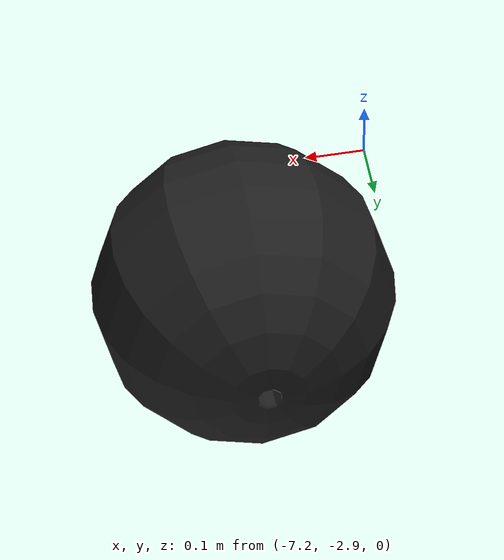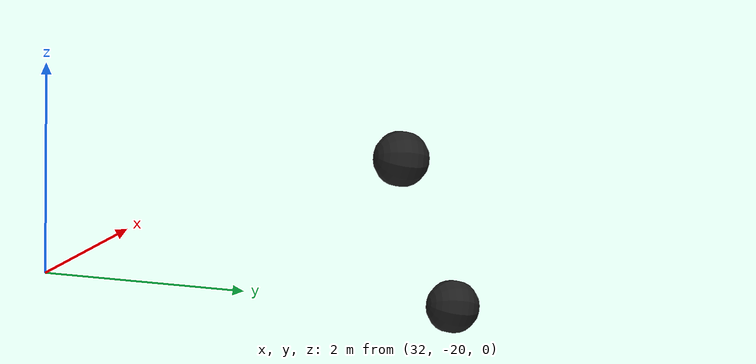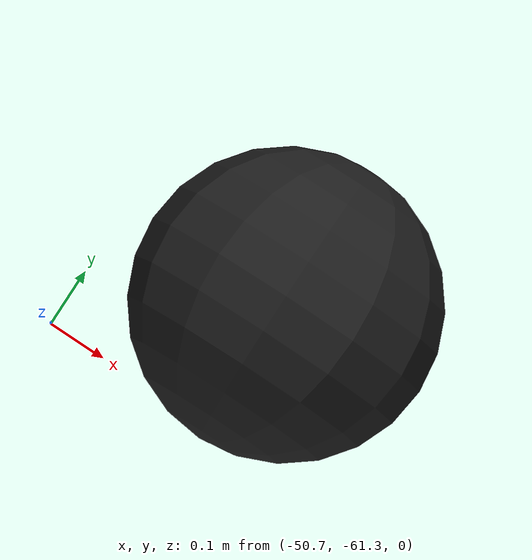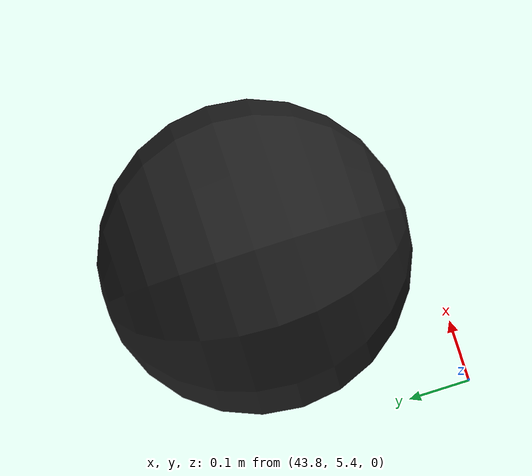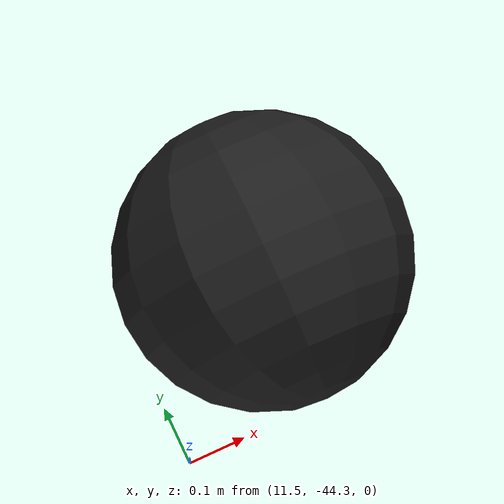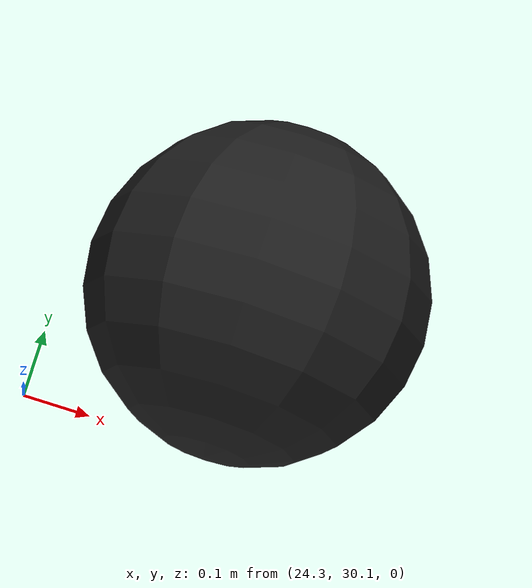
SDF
<?xml version="1.0"?>
<sdf version="1.6">
  <model name="robotx_obstacle_course">
    <include>
      <name>mb_round_buoy_black_0</name>
      <pose>11.75309579 -44.04348694 0.0 0 0 0 </pose>
      <uri>https://fuel.gazebosim.org/1.0/openrobotics/models/mb_round_buoy_black</uri>
      <plugin name="vrx::PolyhedraBuoyancyDrag"
              filename="libPolyhedraBuoyancyDrag.so">
        <fluid_density>1000</fluid_density>
        <fluid_level>0.0</fluid_level>
        <linear_drag>25.0</linear_drag>
        <angular_drag>2.0</angular_drag>
        <buoyancy name="collision_outer">
          <link_name>link</link_name>
          <pose>0 0 0 0 0 0</pose>
          <geometry>
            <sphere>
              <radius>0.25</radius>
          </sphere>
          </geometry>
        </buoyancy>
        <wavefield>
          <size>1000 1000</size>
          <cell_count>50 50></cell_count>
          <wave>
            <model>PMS</model>
            <period>5.0</period>
            <number>3</number>
            <scale>1.1</scale>
            <gain>0.3</gain>
            <direction>1 0</direction>
            <angle>0.4</angle>
            <tau>2.0</tau>
            <amplitude>0.0</amplitude>
            <steepness>0.0</steepness>
          </wave>
        </wavefield>
      </plugin>
    </include>

    <include>
      <name>mb_round_buoy_black_1</name>
      <pose>-4.38017291 -31.00932693 0.0 0 0 0 </pose>
      <uri>https://fuel.gazebosim.org/1.0/openrobotics/models/mb_round_buoy_black</uri>
      <plugin name="vrx::PolyhedraBuoyancyDrag"
              filename="libPolyhedraBuoyancyDrag.so">
        <fluid_density>1000</fluid_density>
        <fluid_level>0.0</fluid_level>
        <linear_drag>25.0</linear_drag>
        <angular_drag>2.0</angular_drag>
        <buoyancy name="collision_outer">
          <link_name>link</link_name>
          <pose>0 0 0 0 0 0</pose>
          <geometry>
            <sphere>
              <radius>0.25</radius>
          </sphere>
          </geometry>
        </buoyancy>
        <wavefield>
          <size>1000 1000</size>
          <cell_count>50 50></cell_count>
          <wave>
            <model>PMS</model>
            <period>5.0</period>
            <number>3</number>
            <scale>1.1</scale>
            <gain>0.3</gain>
            <direction>1 0</direction>
            <angle>0.4</angle>
            <tau>2.0</tau>
            <amplitude>0.0</amplitude>
            <steepness>0.0</steepness>
          </wave>
        </wavefield>
      </plugin>
    </include>

    <include>
      <name>mb_round_buoy_black_2</name>
      <pose>22.6568676   -0.92141124 0.0 0 0 0 </pose>
      <uri>https://fuel.gazebosim.org/1.0/openrobotics/models/mb_round_buoy_black</uri>
      <plugin name="vrx::PolyhedraBuoyancyDrag"
              filename="libPolyhedraBuoyancyDrag.so">
        <fluid_density>1000</fluid_density>
        <fluid_level>0.0</fluid_level>
        <linear_drag>25.0</linear_drag>
        <angular_drag>2.0</angular_drag>
        <buoyancy name="collision_outer">
          <link_name>link</link_name>
          <pose>0 0 0 0 0 0</pose>
          <geometry>
            <sphere>
              <radius>0.25</radius>
          </sphere>
          </geometry>
        </buoyancy>
        <wavefield>
          <size>1000 1000</size>
          <cell_count>50 50></cell_count>
          <wave>
            <model>PMS</model>
            <period>5.0</period>
            <number>3</number>
            <scale>1.1</scale>
            <gain>0.3</gain>
            <direction>1 0</direction>
            <angle>0.4</angle>
            <tau>2.0</tau>
            <amplitude>0.0</amplitude>
            <steepness>0.0</steepness>
          </wave>
        </wavefield>
      </plugin>
    </include>

    <include>
      <name>mb_round_buoy_black_3</name>
      <pose>44.09486489   5.66663984 0.0 0 0 0 </pose>
      <uri>https://fuel.gazebosim.org/1.0/openrobotics/models/mb_round_buoy_black</uri>
      <plugin name="vrx::PolyhedraBuoyancyDrag"
              filename="libPolyhedraBuoyancyDrag.so">
        <fluid_density>1000</fluid_density>
        <fluid_level>0.0</fluid_level>
        <linear_drag>25.0</linear_drag>
        <angular_drag>2.0</angular_drag>
        <buoyancy name="collision_outer">
          <link_name>link</link_name>
          <pose>0 0 0 0 0 0</pose>
          <geometry>
            <sphere>
              <radius>0.25</radius>
          </sphere>
          </geometry>
        </buoyancy>
        <wavefield>
          <size>1000 1000</size>
          <cell_count>50 50></cell_count>
          <wave>
            <model>PMS</model>
            <period>5.0</period>
            <number>3</number>
            <scale>1.1</scale>
            <gain>0.3</gain>
            <direction>1 0</direction>
            <angle>0.4</angle>
            <tau>2.0</tau>
            <amplitude>0.0</amplitude>
            <steepness>0.0</steepness>
          </wave>
        </wavefield>
      </plugin>
    </include>

    <include>
      <name>mb_round_buoy_black_4</name>
      <pose>32.17463149 -15.94637324 0.0 0 0 0 </pose>
      <uri>https://fuel.gazebosim.org/1.0/openrobotics/models/mb_round_buoy_black</uri>
      <plugin name="vrx::PolyhedraBuoyancyDrag"
              filename="libPolyhedraBuoyancyDrag.so">
        <fluid_density>1000</fluid_density>
        <fluid_level>0.0</fluid_level>
        <linear_drag>25.0</linear_drag>
        <angular_drag>2.0</angular_drag>
        <buoyancy name="collision_outer">
          <link_name>link</link_name>
          <pose>0 0 0 0 0 0</pose>
          <geometry>
            <sphere>
              <radius>0.25</radius>
          </sphere>
          </geometry>
        </buoyancy>
        <wavefield>
          <size>1000 1000</size>
          <cell_count>50 50></cell_count>
          <wave>
            <model>PMS</model>
            <period>5.0</period>
            <number>3</number>
            <scale>1.1</scale>
            <gain>0.3</gain>
            <direction>1 0</direction>
            <angle>0.4</angle>
            <tau>2.0</tau>
            <amplitude>0.0</amplitude>
            <steepness>0.0</steepness>
          </wave>
        </wavefield>
      </plugin>
    </include>

    <include>
      <name>mb_round_buoy_black_5</name>
      <pose>-6.94456804 -2.61300114 0.0 0 0 0 </pose>
      <uri>https://fuel.gazebosim.org/1.0/openrobotics/models/mb_round_buoy_black</uri>
      <plugin name="vrx::PolyhedraBuoyancyDrag"
              filename="libPolyhedraBuoyancyDrag.so">
        <fluid_density>1000</fluid_density>
        <fluid_level>0.0</fluid_level>
        <linear_drag>25.0</linear_drag>
        <angular_drag>2.0</angular_drag>
        <buoyancy name="collision_outer">
          <link_name>link</link_name>
          <pose>0 0 0 0 0 0</pose>
          <geometry>
            <sphere>
              <radius>0.25</radius>
          </sphere>
          </geometry>
        </buoyancy>
        <wavefield>
          <size>1000 1000</size>
          <cell_count>50 50></cell_count>
          <wave>
            <model>PMS</model>
            <period>5.0</period>
            <number>3</number>
            <scale>1.1</scale>
            <gain>0.3</gain>
            <direction>1 0</direction>
            <angle>0.4</angle>
            <tau>2.0</tau>
            <amplitude>0.0</amplitude>
            <steepness>0.0</steepness>
          </wave>
        </wavefield>
      </plugin>
    </include>

    <include>
      <name>mb_round_buoy_black_6</name>
      <pose>-50.40281825 -61.06834745 0.0 0 0 0 </pose>
      <uri>https://fuel.gazebosim.org/1.0/openrobotics/models/mb_round_buoy_black</uri>
      <plugin name="vrx::PolyhedraBuoyancyDrag"
              filename="libPolyhedraBuoyancyDrag.so">
        <fluid_density>1000</fluid_density>
        <fluid_level>0.0</fluid_level>
        <linear_drag>25.0</linear_drag>
        <angular_drag>2.0</angular_drag>
        <buoyancy name="collision_outer">
          <link_name>link</link_name>
          <pose>0 0 0 0 0 0</pose>
          <geometry>
            <sphere>
              <radius>0.25</radius>
          </sphere>
          </geometry>
        </buoyancy>
        <wavefield>
          <size>1000 1000</size>
          <cell_count>50 50></cell_count>
          <wave>
            <model>PMS</model>
            <period>5.0</period>
            <number>3</number>
            <scale>1.1</scale>
            <gain>0.3</gain>
            <direction>1 0</direction>
            <angle>0.4</angle>
            <tau>2.0</tau>
            <amplitude>0.0</amplitude>
            <steepness>0.0</steepness>
          </wave>
        </wavefield>
      </plugin>
    </include>

    <include>
      <name>mb_round_buoy_black_7</name>
      <pose>24.576913737 30.3481238647 0.0 0 0 0 </pose>
      <uri>https://fuel.gazebosim.org/1.0/openrobotics/models/mb_round_buoy_black</uri>
      <plugin name="vrx::PolyhedraBuoyancyDrag"
              filename="libPolyhedraBuoyancyDrag.so">
        <fluid_density>1000</fluid_density>
        <fluid_level>0.0</fluid_level>
        <linear_drag>25.0</linear_drag>
        <angular_drag>2.0</angular_drag>
        <buoyancy name="collision_outer">
          <link_name>link</link_name>
          <pose>0 0 0 0 0 0</pose>
          <geometry>
            <sphere>
              <radius>0.25</radius>
          </sphere>
          </geometry>
        </buoyancy>
        <wavefield>
          <size>1000 1000</size>
          <cell_count>50 50></cell_count>
          <wave>
            <model>PMS</model>
            <period>5.0</period>
            <number>3</number>
            <scale>1.1</scale>
            <gain>0.3</gain>
            <direction>1 0</direction>
            <angle>0.4</angle>
            <tau>2.0</tau>
            <amplitude>0.0</amplitude>
            <steepness>0.0</steepness>
          </wave>
        </wavefield>
      </plugin>
    </include>

    <include>
      <name>mb_round_buoy_black_8</name>
      <pose>37.5737439619 -18.8335819857 0.0 0 0 0 </pose>
      <uri>https://fuel.gazebosim.org/1.0/openrobotics/models/mb_round_buoy_black</uri>
      <plugin name="vrx::PolyhedraBuoyancyDrag"
              filename="libPolyhedraBuoyancyDrag.so">
        <fluid_density>1000</fluid_density>
        <fluid_level>0.0</fluid_level>
        <linear_drag>25.0</linear_drag>
        <angular_drag>2.0</angular_drag>
        <buoyancy name="collision_outer">
          <link_name>link</link_name>
          <pose>0 0 0 0 0 0</pose>
          <geometry>
            <sphere>
              <radius>0.25</radius>
          </sphere>
          </geometry>
        </buoyancy>
        <wavefield>
          <size>1000 1000</size>
          <cell_count>50 50></cell_count>
          <wave>
            <model>PMS</model>
            <period>5.0</period>
            <number>3</number>
            <scale>1.1</scale>
            <gain>0.3</gain>
            <direction>1 0</direction>
            <angle>0.4</angle>
            <tau>2.0</tau>
            <amplitude>0.0</amplitude>
            <steepness>0.0</steepness>
          </wave>
        </wavefield>
      </plugin>
    </include>

    <include>
      <name>mb_round_buoy_black_9</name>
      <pose>-2.49572219989 13.1619102364 0.0 0 0 0 </pose>
      <uri>https://fuel.gazebosim.org/1.0/openrobotics/models/mb_round_buoy_black</uri>
      <plugin name="vrx::PolyhedraBuoyancyDrag"
              filename="libPolyhedraBuoyancyDrag.so">
        <fluid_density>1000</fluid_density>
        <fluid_level>0.0</fluid_level>
        <linear_drag>25.0</linear_drag>
        <angular_drag>2.0</angular_drag>
        <buoyancy name="collision_outer">
          <link_name>link</link_name>
          <pose>0 0 0 0 0 0</pose>
          <geometry>
            <sphere>
              <radius>0.25</radius>
          </sphere>
          </geometry>
        </buoyancy>
        <wavefield>
          <size>1000 1000</size>
          <cell_count>50 50></cell_count>
          <wave>
            <model>PMS</model>
            <period>5.0</period>
            <number>3</number>
            <scale>1.1</scale>
            <gain>0.3</gain>
            <direction>1 0</direction>
            <angle>0.4</angle>
            <tau>2.0</tau>
            <amplitude>0.0</amplitude>
            <steepness>0.0</steepness>
          </wave>
        </wavefield>
      </plugin>
    </include>

    <include>
      <name>mb_round_buoy_orange_0</name>
      <pose>-22.30202998   7.58586649 0.0 0 0 0 </pose>
      <uri>https://fuel.gazebosim.org/1.0/openrobotics/models/mb_round_buoy_orange</uri>
      <plugin name="vrx::PolyhedraBuoyancyDrag"
              filename="libPolyhedraBuoyancyDrag.so">
        <fluid_density>1000</fluid_density>
        <fluid_level>0.0</fluid_level>
        <linear_drag>25.0</linear_drag>
        <angular_drag>2.0</angular_drag>
        <buoyancy name="collision_outer">
          <link_name>link</link_name>
          <pose>0 0 0 0 0 0</pose>
          <geometry>
            <sphere>
              <radius>0.25</radius>
          </sphere>
          </geometry>
        </buoyancy>
        <wavefield>
          <size>1000 1000</size>
          <cell_count>50 50></cell_count>
          <wave>
            <model>PMS</model>
            <period>5.0</period>
            <number>3</number>
            <scale>1.1</scale>
            <gain>0.3</gain>
            <direction>1 0</direction>
            <angle>0.4</angle>
            <tau>2.0</tau>
            <amplitude>0.0</amplitude>
            <steepness>0.0</steepness>
          </wave>
        </wavefield>
      </plugin>
    </include>

    <include>
      <name>mb_round_buoy_orange_1</name>
      <pose>33.86021685  14.50500992 0.0 0 0 0 </pose>
      <plugin name="vrx::PolyhedraBuoyancyDrag"
              filename="libPolyhedraBuoyancyDrag.so">
        <fluid_density>1000</fluid_density>
        <fluid_level>0.0</fluid_level>
        <linear_drag>25.0</linear_drag>
        <angular_drag>2.0</angular_drag>
        <buoyancy name="collision_outer">
          <link_name>link</link_name>
          <pose>0 0 0 0 0 0</pose>
          <geometry>
            <sphere>
              <radius>0.25</radius>
          </sphere>
          </geometry>
        </buoyancy>
        <wavefield>
          <size>1000 1000</size>
          <cell_count>50 50></cell_count>
          <wave>
            <model>PMS</model>
            <period>5.0</period>
            <number>3</number>
            <scale>1.1</scale>
            <gain>0.3</gain>
            <direction>1 0</direction>
            <angle>0.4</angle>
            <tau>2.0</tau>
            <amplitude>0.0</amplitude>
            <steepness>0.0</steepness>
          </wave>
        </wavefield>
      </plugin>
      <uri>https://fuel.gazebosim.org/1.0/openrobotics/models/mb_round_buoy_orange</uri>
    </include>

    <include>
      <name>mb_round_buoy_orange_2</name>
      <pose>-37.1237799886 -55.0780758672 0.0 0 0 0 </pose>
      <uri>https://fuel.gazebosim.org/1.0/openrobotics/models/mb_round_buoy_orange</uri>
      <plugin name="vrx::PolyhedraBuoyancyDrag"
              filename="libPolyhedraBuoyancyDrag.so">
        <fluid_density>1000</fluid_density>
        <fluid_level>0.0</fluid_level>
        <linear_drag>25.0</linear_drag>
        <angular_drag>2.0</angular_drag>
        <buoyancy name="collision_outer">
          <link_name>link</link_name>
          <pose>0 0 0 0 0 0</pose>
          <geometry>
            <sphere>
              <radius>0.25</radius>
          </sphere>
          </geometry>
        </buoyancy>
        <wavefield>
          <size>1000 1000</size>
          <cell_count>50 50></cell_count>
          <wave>
            <model>PMS</model>
            <period>5.0</period>
            <number>3</number>
            <scale>1.1</scale>
            <gain>0.3</gain>
            <direction>1 0</direction>
            <angle>0.4</angle>
            <tau>2.0</tau>
            <amplitude>0.0</amplitude>
            <steepness>0.0</steepness>
          </wave>
        </wavefield>
      </plugin>
    </include>

    <include>
      <name>mb_round_buoy_orange_3</name>
      <pose>-23.77126376  27.34241072 0.0 0 0 0 </pose>
      <uri>https://fuel.gazebosim.org/1.0/openrobotics/models/mb_round_buoy_orange</uri>
      <plugin name="vrx::PolyhedraBuoyancyDrag"
              filename="libPolyhedraBuoyancyDrag.so">
        <fluid_density>1000</fluid_density>
        <fluid_level>0.0</fluid_level>
        <linear_drag>25.0</linear_drag>
        <angular_drag>2.0</angular_drag>
        <buoyancy name="collision_outer">
          <link_name>link</link_name>
          <pose>0 0 0 0 0 0</pose>
          <geometry>
            <sphere>
              <radius>0.25</radius>
          </sphere>
          </geometry>
        </buoyancy>
        <wavefield>
          <size>1000 1000</size>
          <cell_count>50 50></cell_count>
          <wave>
            <model>PMS</model>
            <period>5.0</period>
            <number>3</number>
            <scale>1.1</scale>
            <gain>0.3</gain>
            <direction>1 0</direction>
            <angle>0.4</angle>
            <tau>2.0</tau>
            <amplitude>0.0</amplitude>
            <steepness>0.0</steepness>
          </wave>
        </wavefield>
      </plugin>
    </include>

    <include>
      <name>mb_round_buoy_orange_4</name>
      <pose>-16.29351304 -24.97527506 0.0 0 0 0 </pose>
      <uri>https://fuel.gazebosim.org/1.0/openrobotics/models/mb_round_buoy_orange</uri>
      <plugin name="vrx::PolyhedraBuoyancyDrag"
              filename="libPolyhedraBuoyancyDrag.so">
        <fluid_density>1000</fluid_density>
        <fluid_level>0.0</fluid_level>
        <linear_drag>25.0</linear_drag>
        <angular_drag>2.0</angular_drag>
        <buoyancy name="collision_outer">
          <link_name>link</link_name>
          <pose>0 0 0 0 0 0</pose>
          <geometry>
            <sphere>
              <radius>0.25</radius>
          </sphere>
          </geometry>
        </buoyancy>
        <wavefield>
          <size>1000 1000</size>
          <cell_count>50 50></cell_count>
          <wave>
            <model>PMS</model>
            <period>5.0</period>
            <number>3</number>
            <scale>1.1</scale>
            <gain>0.3</gain>
            <direction>1 0</direction>
            <angle>0.4</angle>
            <tau>2.0</tau>
            <amplitude>0.0</amplitude>
            <steepness>0.0</steepness>
          </wave>
        </wavefield>
      </plugin>
    </include>

  </model>
</sdf>

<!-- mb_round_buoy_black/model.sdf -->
<sdf version="1.6">
  <model name="mb_round_buoy_black">
    <link name="link">
      <inertial>
        <pose>0 0 -2 0 0 0</pose>
        <!-- Mass determined based on buoyancy geometry so object
             floats at mid-point of sphere -->
        <mass>3.5</mass>
        <!-- Mark only - based on cylinder -->
        <inertia>
          <ixx>1.0</ixx>
          <ixy>0</ixy>
          <ixz>0</ixz>
          <iyy>1.0</iyy>
          <iyz>0</iyz>
          <izz>0.1</izz>
        </inertia>
      </inertial>
      <collision name="collision">
        <geometry>
          <sphere>
            <radius>0.25</radius>
          </sphere>
        </geometry>
      </collision>
      <visual name="visual">
        <geometry>
	        <mesh><uri>model://mb_round_buoy_orange/meshes/mb_round_buoy.dae</uri></mesh>
        </geometry>
        <material>
          <script>
            <uri>file://media/materials/scripts/gazebo.material</uri>
            <name>Gazebo/Black</name>
          </script>
        </material>
      </visual>
    </link>
    <plugin name="BuoyancyPlugin" filename="libbuoyancy_gazebo_plugin.so">
      <wave_model>ocean_waves</wave_model>
      <fluid_density>1000</fluid_density>
      <fluid_level>0.0</fluid_level>
      <linear_drag>25.0</linear_drag>
      <angular_drag>2.0</angular_drag>
      <buoyancy name="buoyancy_sphere">
        <link_name>link</link_name>
        <pose>0 0 0.02 0 0 0</pose>
        <geometry>
          <sphere>
            <radius>0.235</radius>
          </sphere>
        </geometry>
      </buoyancy>
    </plugin>
  </model>
</sdf>

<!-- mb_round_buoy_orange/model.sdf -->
<sdf version="1.6">
  <model name="mb_round_buoy_orange">
    <link name="link">
      <inertial>
        <pose>0 0 -2 0 0 0</pose>
        <!-- Mass determined based on buoyancy geometry so object
             floats at mid-point of sphere -->
        <mass>3.5</mass>
        <!-- Mark only - based on cylinder -->
        <inertia>
          <ixx>1.0</ixx>
          <ixy>0</ixy>
          <ixz>0</ixz>
          <iyy>1.0</iyy>
          <iyz>0</iyz>
          <izz>0.1</izz>
        </inertia>
      </inertial>
      <collision name="collision">
        <geometry>
          <sphere>
            <radius>0.25</radius>
          </sphere>
        </geometry>
      </collision>
      <visual name="visual">
        <geometry>
	        <mesh><uri>model://mb_round_buoy_orange/meshes/mb_round_buoy.dae</uri></mesh>
        </geometry>
        <material>
          <script>
            <uri>model://mb_round_buoy_orange/materials/scripts/mb_round_buoy.material</uri>
            <name>mb_round_buoy/Orange</name>
          </script>
        </material>
      </visual>
    </link>
    <plugin name="BuoyancyPlugin" filename="libbuoyancy_gazebo_plugin.so">
      <wave_model>ocean_waves</wave_model>
      <fluid_density>1000</fluid_density>
      <fluid_level>0.0</fluid_level>
      <linear_drag>25.0</linear_drag>
      <angular_drag>2.0</angular_drag>
      <buoyancy name="buoyancy_sphere">
        <link_name>link</link_name>
        <pose>0 0 0.02 0 0 0</pose>
        <geometry>
          <sphere>
            <radius>0.235</radius>
          </sphere>
        </geometry>
      </buoyancy>
    </plugin>
  </model>
</sdf>
